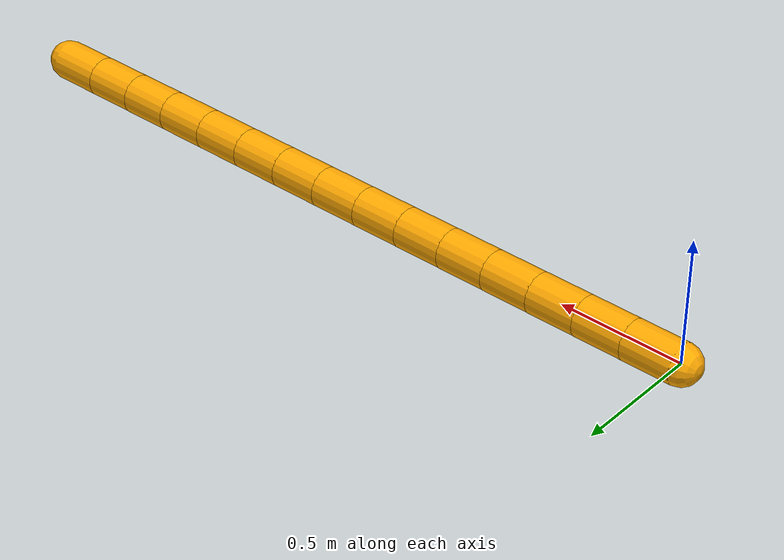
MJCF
<mujoco>
  <default>
    <default class="boa">
      <geom type="capsule" friction="0.05" mass="0.4" size="0.08 0.10" rgba="1 0.66 0 1" zaxis="1 0 0" pos="0.1 0 0"/>
      <joint damping="0.4"/>
    </default>
    <intvelocity kp="50" forcerange="-3 3" forcelimited="true" actrange="-1.57 1.57"/>
  </default>

  <worldbody>

    <body childclass="boa" name="boa">
      <geom/>
      <joint type="free"/>

      <body pos="0.2 0 0">
        <geom/>
        <joint name="joint_1"/>

        <body pos="0.2 0 0">
          <geom/>
          <joint name="joint_2"/>

          <body pos="0.2 0 0">
            <geom/>
            <joint name="joint_3"/>

            <body pos="0.2 0 0">
              <geom/>
              <joint name="joint_4"/>

              <body pos="0.2 0 0">
                <geom/>
                <joint name="joint_5"/>

                <body pos="0.2 0 0">
                  <geom/>
                  <joint name="joint_6"/>

                  <body pos="0.2 0 0">
                    <geom/>
                    <joint name="joint_7"/>

                    <body pos="0.2 0 0">
                      <geom/>
                      <joint name="joint_8"/>

                      <body pos="0.2 0 0">
                        <geom/>
                        <joint name="joint_9"/>

                        <body pos="0.2 0 0">
                          <geom/>
                          <joint name="joint_10"/>

                          <body pos="0.2 0 0">
                            <geom/>
                            <joint name="joint_11"/>

                            <body pos="0.2 0 0">
                              <geom/>
                              <joint name="joint_12"/>

                              <body pos="0.2 0 0">
                                <geom/>
                                <joint name="joint_13"/>

                                <body pos="0.2 0 0" name="head">
                                  <geom/>
                                  <joint name="joint_14"/>

                                </body>
                              </body>
                            </body>
                          </body>
                        </body>
                      </body>
                    </body>
                  </body>
                </body>
              </body>
            </body>
          </body>
        </body>
      </body>
    </body>
  </worldbody>

  <actuator>
    <intvelocity joint="joint_1"/>
    <intvelocity joint="joint_2"/>
    <intvelocity joint="joint_3"/>
    <intvelocity joint="joint_4"/>
    <intvelocity joint="joint_5"/>
    <intvelocity joint="joint_6"/>
    <intvelocity joint="joint_7"/>
    <intvelocity joint="joint_8"/>
    <intvelocity joint="joint_9"/>
    <intvelocity joint="joint_10"/>
    <intvelocity joint="joint_11"/>
    <intvelocity joint="joint_12"/>
    <intvelocity joint="joint_13"/>
    <intvelocity joint="joint_14"/>
  </actuator>
</mujoco>
